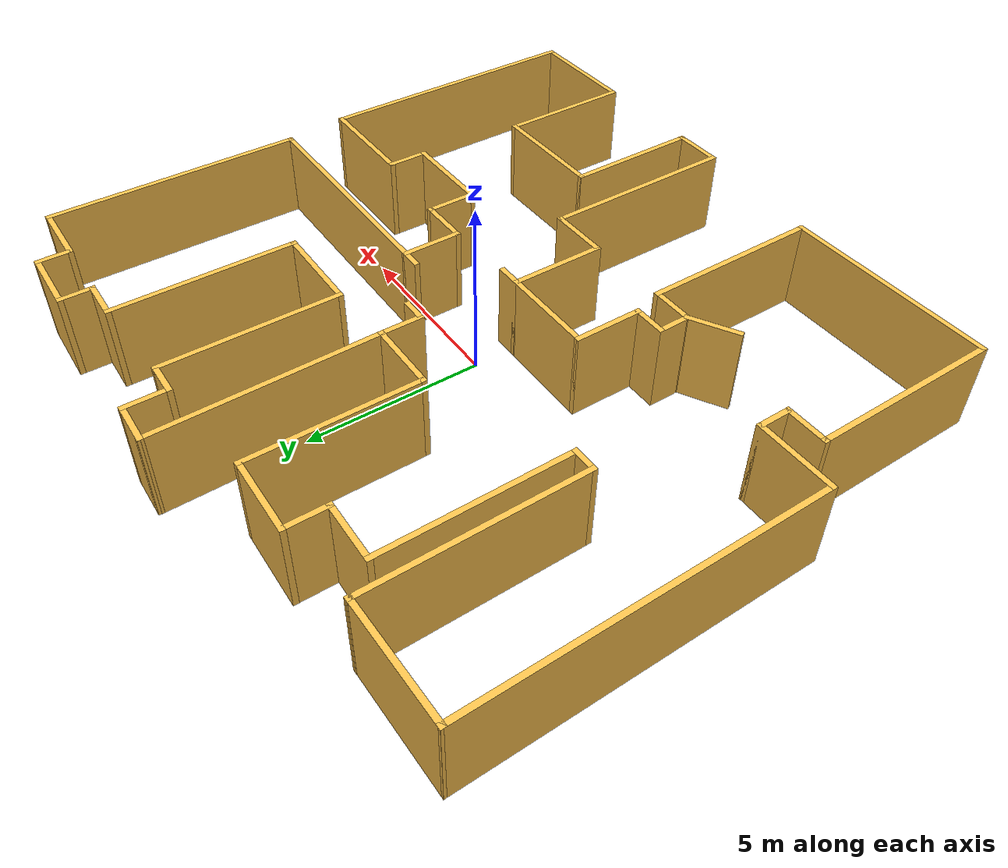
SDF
<?xml version='1.0'?>
<sdf version='1.6'>
  <model name='map_118'>
    <pose frame=''>0.022554 -0.245516 0 0 -0 0</pose>
    <link name='Wall_10'>
      <collision name='Wall_10_Collision'>
        <geometry>
          <box>
            <size>5.25 0.15 2.5</size>
          </box>
        </geometry>
        <pose frame=''>0 0 1.25 0 -0 0</pose>
      </collision>
      <visual name='Wall_10_Visual'>
        <pose frame=''>0 0 1.25 0 -0 0</pose>
        <geometry>
          <box>
            <size>5.25 0.15 2.5</size>
          </box>
        </geometry>
        <material>
          <script>
            <uri>file://media/materials/scripts/gazebo.material</uri>
            <name>Gazebo/Grey</name>
          </script>
          <ambient>1 0.764706 0.305882 1</ambient>
        </material>
        <meta>
          <layer>0</layer>
        </meta>
      </visual>
      <pose frame=''>-2.57383 -6.12539 0 0 -0 1.5708</pose>
    </link>
    <link name='Wall_11'>
      <collision name='Wall_11_Collision'>
        <geometry>
          <box>
            <size>1.25 0.15 2.5</size>
          </box>
        </geometry>
        <pose frame=''>0 0 1.25 0 -0 0</pose>
      </collision>
      <visual name='Wall_11_Visual'>
        <pose frame=''>0 0 1.25 0 -0 0</pose>
        <geometry>
          <box>
            <size>1.25 0.15 2.5</size>
          </box>
        </geometry>
        <material>
          <script>
            <uri>file://media/materials/scripts/gazebo.material</uri>
            <name>Gazebo/Grey</name>
          </script>
          <ambient>1 0.764706 0.305882 1</ambient>
        </material>
        <meta>
          <layer>0</layer>
        </meta>
      </visual>
      <pose frame=''>-3.12383 -3.57539 0 0 -0 3.14159</pose>
    </link>
    <link name='Wall_12'>
      <collision name='Wall_12_Collision'>
        <geometry>
          <box>
            <size>1 0.15 2.5</size>
          </box>
        </geometry>
        <pose frame=''>0 0 1.25 0 -0 0</pose>
      </collision>
      <visual name='Wall_12_Visual'>
        <pose frame=''>0 0 1.25 0 -0 0</pose>
        <geometry>
          <box>
            <size>1 0.15 2.5</size>
          </box>
        </geometry>
        <material>
          <script>
            <uri>file://media/materials/scripts/gazebo.material</uri>
            <name>Gazebo/Grey</name>
          </script>
          <ambient>1 0.764706 0.305882 1</ambient>
        </material>
        <meta>
          <layer>0</layer>
        </meta>
      </visual>
      <pose frame=''>-3.67383 -3.15039 0 0 -0 1.5708</pose>
    </link>
    <link name='Wall_13'>
      <collision name='Wall_13_Collision'>
        <geometry>
          <box>
            <size>1 0.15 2.5</size>
          </box>
        </geometry>
        <pose frame=''>0 0 1.25 0 -0 0</pose>
      </collision>
      <visual name='Wall_13_Visual'>
        <pose frame=''>0 0 1.25 0 -0 0</pose>
        <geometry>
          <box>
            <size>1 0.15 2.5</size>
          </box>
        </geometry>
        <material>
          <script>
            <uri>file://media/materials/scripts/gazebo.material</uri>
            <name>Gazebo/Grey</name>
          </script>
          <ambient>1 0.764706 0.305882 1</ambient>
        </material>
        <meta>
          <layer>0</layer>
        </meta>
      </visual>
      <pose frame=''>-3.24883 -2.72539 0 0 -0 0</pose>
    </link>
    <link name='Wall_14'>
      <collision name='Wall_14_Collision'>
        <geometry>
          <box>
            <size>2 0.15 2.5</size>
          </box>
        </geometry>
        <pose frame=''>0 0 1.25 0 -0 0</pose>
      </collision>
      <visual name='Wall_14_Visual'>
        <pose frame=''>0 0 1.25 0 -0 0</pose>
        <geometry>
          <box>
            <size>2 0.15 2.5</size>
          </box>
        </geometry>
        <material>
          <script>
            <uri>file://media/materials/scripts/gazebo.material</uri>
            <name>Gazebo/Grey</name>
          </script>
          <ambient>1 0.764706 0.305882 1</ambient>
        </material>
        <meta>
          <layer>0</layer>
        </meta>
      </visual>
      <pose frame=''>-2.82383 -1.80039 0 0 -0 1.5708</pose>
    </link>
    <link name='Wall_15'>
      <collision name='Wall_15_Collision'>
        <geometry>
          <box>
            <size>2.75 0.15 2.5</size>
          </box>
        </geometry>
        <pose frame=''>0 0 1.25 0 -0 0</pose>
      </collision>
      <visual name='Wall_15_Visual'>
        <pose frame=''>0 0 1.25 0 -0 0</pose>
        <geometry>
          <box>
            <size>2.75 0.15 2.5</size>
          </box>
        </geometry>
        <material>
          <script>
            <uri>file://media/materials/scripts/gazebo.material</uri>
            <name>Gazebo/Grey</name>
          </script>
          <ambient>1 0.764706 0.305882 1</ambient>
        </material>
        <meta>
          <layer>0</layer>
        </meta>
      </visual>
      <pose frame=''>-1.52383 -0.87539 0 0 -0 0</pose>
    </link>
    <link name='Wall_16'>
      <collision name='Wall_16_Collision'>
        <geometry>
          <box>
            <size>2.75 0.15 2.5</size>
          </box>
        </geometry>
        <pose frame=''>0 0 1.25 0 -0 0</pose>
      </collision>
      <visual name='Wall_16_Visual'>
        <pose frame=''>0 0 1.25 0 -0 0</pose>
        <geometry>
          <box>
            <size>2.75 0.15 2.5</size>
          </box>
        </geometry>
        <material>
          <script>
            <uri>file://media/materials/scripts/gazebo.material</uri>
            <name>Gazebo/Grey</name>
          </script>
          <ambient>1 0.764706 0.305882 1</ambient>
        </material>
        <meta>
          <layer>0</layer>
        </meta>
      </visual>
      <pose frame=''>-0.223829 -2.17539 0 0 -0 -1.5708</pose>
    </link>
    <link name='Wall_17'>
      <collision name='Wall_17_Collision'>
        <geometry>
          <box>
            <size>1.75 0.15 2.5</size>
          </box>
        </geometry>
        <pose frame=''>0 0 1.25 0 -0 0</pose>
      </collision>
      <visual name='Wall_17_Visual'>
        <pose frame=''>0 0 1.25 0 -0 0</pose>
        <geometry>
          <box>
            <size>1.75 0.15 2.5</size>
          </box>
        </geometry>
        <material>
          <script>
            <uri>file://media/materials/scripts/gazebo.material</uri>
            <name>Gazebo/Grey</name>
          </script>
          <ambient>1 0.764706 0.305882 1</ambient>
        </material>
        <meta>
          <layer>0</layer>
        </meta>
      </visual>
      <pose frame=''>0.576171 -3.47539 0 0 -0 0</pose>
    </link>
    <link name='Wall_18'>
      <collision name='Wall_18_Collision'>
        <geometry>
          <box>
            <size>5.75 0.15 2.5</size>
          </box>
        </geometry>
        <pose frame=''>0 0 1.25 0 -0 0</pose>
      </collision>
      <visual name='Wall_18_Visual'>
        <pose frame=''>0 0 1.25 0 -0 0</pose>
        <geometry>
          <box>
            <size>5.75 0.15 2.5</size>
          </box>
        </geometry>
        <material>
          <script>
            <uri>file://media/materials/scripts/gazebo.material</uri>
            <name>Gazebo/Grey</name>
          </script>
          <ambient>1 0.764706 0.305882 1</ambient>
        </material>
        <meta>
          <layer>0</layer>
        </meta>
      </visual>
      <pose frame=''>1.37617 -6.27539 0 0 -0 -1.5708</pose>
    </link>
    <link name='Wall_19'>
      <collision name='Wall_19_Collision'>
        <geometry>
          <box>
            <size>1.5 0.15 2.5</size>
          </box>
        </geometry>
        <pose frame=''>0 0 1.25 0 -0 0</pose>
      </collision>
      <visual name='Wall_19_Visual'>
        <pose frame=''>0 0 1.25 0 -0 0</pose>
        <geometry>
          <box>
            <size>1.5 0.15 2.5</size>
          </box>
        </geometry>
        <material>
          <script>
            <uri>file://media/materials/scripts/gazebo.material</uri>
            <name>Gazebo/Grey</name>
          </script>
          <ambient>1 0.764706 0.305882 1</ambient>
        </material>
        <meta>
          <layer>0</layer>
        </meta>
      </visual>
      <pose frame=''>2.05117 -9.07539 0 0 -0 0</pose>
    </link>
    <link name='Wall_20'>
      <collision name='Wall_20_Collision'>
        <geometry>
          <box>
            <size>4 0.15 2.5</size>
          </box>
        </geometry>
        <pose frame=''>0 0 1.25 0 -0 0</pose>
      </collision>
      <visual name='Wall_20_Visual'>
        <pose frame=''>0 0 1.25 0 -0 0</pose>
        <geometry>
          <box>
            <size>4 0.15 2.5</size>
          </box>
        </geometry>
        <material>
          <script>
            <uri>file://media/materials/scripts/gazebo.material</uri>
            <name>Gazebo/Grey</name>
          </script>
          <ambient>1 0.764706 0.305882 1</ambient>
        </material>
        <meta>
          <layer>0</layer>
        </meta>
      </visual>
      <pose frame=''>2.72617 -7.15039 0 0 -0 1.5708</pose>
    </link>
    <link name='Wall_21'>
      <collision name='Wall_21_Collision'>
        <geometry>
          <box>
            <size>3.5 0.15 2.5</size>
          </box>
        </geometry>
        <pose frame=''>0 0 1.25 0 -0 0</pose>
      </collision>
      <visual name='Wall_21_Visual'>
        <pose frame=''>0 0 1.25 0 -0 0</pose>
        <geometry>
          <box>
            <size>3.5 0.15 2.5</size>
          </box>
        </geometry>
        <material>
          <script>
            <uri>file://media/materials/scripts/gazebo.material</uri>
            <name>Gazebo/Grey</name>
          </script>
          <ambient>1 0.764706 0.305882 1</ambient>
        </material>
        <meta>
          <layer>0</layer>
        </meta>
      </visual>
      <pose frame=''>4.40117 -5.22539 0 0 -0 0</pose>
    </link>
    <link name='Wall_22'>
      <collision name='Wall_22_Collision'>
        <geometry>
          <box>
            <size>4 0.15 2.5</size>
          </box>
        </geometry>
        <pose frame=''>0 0 1.25 0 -0 0</pose>
      </collision>
      <visual name='Wall_22_Visual'>
        <pose frame=''>0 0 1.25 0 -0 0</pose>
        <geometry>
          <box>
            <size>4 0.15 2.5</size>
          </box>
        </geometry>
        <material>
          <script>
            <uri>file://media/materials/scripts/gazebo.material</uri>
            <name>Gazebo/Grey</name>
          </script>
          <ambient>1 0.764706 0.305882 1</ambient>
        </material>
        <meta>
          <layer>0</layer>
        </meta>
      </visual>
      <pose frame=''>6.07617 -7.15039 0 0 -0 -1.5708</pose>
    </link>
    <link name='Wall_23'>
      <collision name='Wall_23_Collision'>
        <geometry>
          <box>
            <size>3.5 0.15 2.5</size>
          </box>
        </geometry>
        <pose frame=''>0 0 1.25 0 -0 0</pose>
      </collision>
      <visual name='Wall_23_Visual'>
        <pose frame=''>0 0 1.25 0 -0 0</pose>
        <geometry>
          <box>
            <size>3.5 0.15 2.5</size>
          </box>
        </geometry>
        <material>
          <script>
            <uri>file://media/materials/scripts/gazebo.material</uri>
            <name>Gazebo/Grey</name>
          </script>
          <ambient>1 0.764706 0.305882 1</ambient>
        </material>
        <meta>
          <layer>0</layer>
        </meta>
      </visual>
      <pose frame=''>7.75117 -9.07539 0 0 -0 0</pose>
    </link>
    <link name='Wall_24'>
      <collision name='Wall_24_Collision'>
        <geometry>
          <box>
            <size>8.25 0.15 2.5</size>
          </box>
        </geometry>
        <pose frame=''>0 0 1.25 0 -0 0</pose>
      </collision>
      <visual name='Wall_24_Visual'>
        <pose frame=''>0 0 1.25 0 -0 0</pose>
        <geometry>
          <box>
            <size>8.25 0.15 2.5</size>
          </box>
        </geometry>
        <material>
          <script>
            <uri>file://media/materials/scripts/gazebo.material</uri>
            <name>Gazebo/Grey</name>
          </script>
          <ambient>1 0.764706 0.305882 1</ambient>
        </material>
        <meta>
          <layer>0</layer>
        </meta>
      </visual>
      <pose frame=''>9.42617 -5.02539 0 0 -0 1.5708</pose>
    </link>
    <link name='Wall_25'>
      <collision name='Wall_25_Collision'>
        <geometry>
          <box>
            <size>3.25 0.15 2.5</size>
          </box>
        </geometry>
        <pose frame=''>0 0 1.25 0 -0 0</pose>
      </collision>
      <visual name='Wall_25_Visual'>
        <pose frame=''>0 0 1.25 0 -0 0</pose>
        <geometry>
          <box>
            <size>3.25 0.15 2.5</size>
          </box>
        </geometry>
        <material>
          <script>
            <uri>file://media/materials/scripts/gazebo.material</uri>
            <name>Gazebo/Grey</name>
          </script>
          <ambient>1 0.764706 0.305882 1</ambient>
        </material>
        <meta>
          <layer>0</layer>
        </meta>
      </visual>
      <pose frame=''>7.87617 -0.97539 0 0 -0 3.14159</pose>
    </link>
    <link name='Wall_26'>
      <collision name='Wall_26_Collision'>
        <geometry>
          <box>
            <size>1.25 0.15 2.5</size>
          </box>
        </geometry>
        <pose frame=''>0 0 1.25 0 -0 0</pose>
      </collision>
      <visual name='Wall_26_Visual'>
        <pose frame=''>0 0 1.25 0 -0 0</pose>
        <geometry>
          <box>
            <size>1.25 0.15 2.5</size>
          </box>
        </geometry>
        <material>
          <script>
            <uri>file://media/materials/scripts/gazebo.material</uri>
            <name>Gazebo/Grey</name>
          </script>
          <ambient>1 0.764706 0.305882 1</ambient>
        </material>
        <meta>
          <layer>0</layer>
        </meta>
      </visual>
      <pose frame=''>6.32617 -1.52539 0 0 -0 -1.5708</pose>
    </link>
    <link name='Wall_27'>
      <collision name='Wall_27_Collision'>
        <geometry>
          <box>
            <size>2.75 0.15 2.5</size>
          </box>
        </geometry>
        <pose frame=''>0 0 1.25 0 -0 0</pose>
      </collision>
      <visual name='Wall_27_Visual'>
        <pose frame=''>0 0 1.25 0 -0 0</pose>
        <geometry>
          <box>
            <size>2.75 0.15 2.5</size>
          </box>
        </geometry>
        <material>
          <script>
            <uri>file://media/materials/scripts/gazebo.material</uri>
            <name>Gazebo/Grey</name>
          </script>
          <ambient>1 0.764706 0.305882 1</ambient>
        </material>
        <meta>
          <layer>0</layer>
        </meta>
      </visual>
      <pose frame=''>5.02617 -2.07539 0 0 -0 3.14159</pose>
    </link>
    <link name='Wall_28'>
      <collision name='Wall_28_Collision'>
        <geometry>
          <box>
            <size>1.5 0.15 2.5</size>
          </box>
        </geometry>
        <pose frame=''>0 0 1.25 0 -0 0</pose>
      </collision>
      <visual name='Wall_28_Visual'>
        <pose frame=''>0 0 1.25 0 -0 0</pose>
        <geometry>
          <box>
            <size>1.5 0.15 2.5</size>
          </box>
        </geometry>
        <material>
          <script>
            <uri>file://media/materials/scripts/gazebo.material</uri>
            <name>Gazebo/Grey</name>
          </script>
          <ambient>1 0.764706 0.305882 1</ambient>
        </material>
        <meta>
          <layer>0</layer>
        </meta>
      </visual>
      <pose frame=''>3.72617 -1.40039 0 0 -0 1.5708</pose>
    </link>
    <link name='Wall_33'>
      <collision name='Wall_33_Collision'>
        <geometry>
          <box>
            <size>2 0.15 2.5</size>
          </box>
        </geometry>
        <pose frame=''>0 0 1.25 0 -0 0</pose>
      </collision>
      <visual name='Wall_33_Visual'>
        <pose frame=''>0 0 1.25 0 -0 0</pose>
        <geometry>
          <box>
            <size>2 0.15 2.5</size>
          </box>
        </geometry>
        <material>
          <script>
            <uri>file://media/materials/scripts/gazebo.material</uri>
            <name>Gazebo/Grey</name>
          </script>
          <ambient>1 0.764706 0.305882 1</ambient>
        </material>
        <meta>
          <layer>0</layer>
        </meta>
      </visual>
      <pose frame=''>8.30117 8.22461 0 0 -0 3.14159</pose>
    </link>
    <link name='Wall_34'>
      <collision name='Wall_34_Collision'>
        <geometry>
          <box>
            <size>1 0.15 2.5</size>
          </box>
        </geometry>
        <pose frame=''>0 0 1.25 0 -0 0</pose>
      </collision>
      <visual name='Wall_34_Visual'>
        <pose frame=''>0 0 1.25 0 -0 0</pose>
        <geometry>
          <box>
            <size>1 0.15 2.5</size>
          </box>
        </geometry>
        <material>
          <script>
            <uri>file://media/materials/scripts/gazebo.material</uri>
            <name>Gazebo/Grey</name>
          </script>
          <ambient>1 0.764706 0.305882 1</ambient>
        </material>
        <meta>
          <layer>0</layer>
        </meta>
      </visual>
      <pose frame=''>7.37617 8.64961 0 0 -0 1.5708</pose>
    </link>
    <link name='Wall_35'>
      <collision name='Wall_35_Collision'>
        <geometry>
          <box>
            <size>2 0.15 2.5</size>
          </box>
        </geometry>
        <pose frame=''>0 0 1.25 0 -0 0</pose>
      </collision>
      <visual name='Wall_35_Visual'>
        <pose frame=''>0 0 1.25 0 -0 0</pose>
        <geometry>
          <box>
            <size>2 0.15 2.5</size>
          </box>
        </geometry>
        <material>
          <script>
            <uri>file://media/materials/scripts/gazebo.material</uri>
            <name>Gazebo/Grey</name>
          </script>
          <ambient>1 0.764706 0.305882 1</ambient>
        </material>
        <meta>
          <layer>0</layer>
        </meta>
      </visual>
      <pose frame=''>6.45117 9.07461 0 0 -0 3.14159</pose>
    </link>
    <link name='Wall_36'>
      <collision name='Wall_36_Collision'>
        <geometry>
          <box>
            <size>1 0.15 2.5</size>
          </box>
        </geometry>
        <pose frame=''>0 0 1.25 0 -0 0</pose>
      </collision>
      <visual name='Wall_36_Visual'>
        <pose frame=''>0 0 1.25 0 -0 0</pose>
        <geometry>
          <box>
            <size>1 0.15 2.5</size>
          </box>
        </geometry>
        <material>
          <script>
            <uri>file://media/materials/scripts/gazebo.material</uri>
            <name>Gazebo/Grey</name>
          </script>
          <ambient>1 0.764706 0.305882 1</ambient>
        </material>
        <meta>
          <layer>0</layer>
        </meta>
      </visual>
      <pose frame=''>5.52617 8.64961 0 0 -0 -1.5708</pose>
    </link>
    <link name='Wall_37'>
      <collision name='Wall_37_Collision'>
        <geometry>
          <box>
            <size>1.25 0.15 2.5</size>
          </box>
        </geometry>
        <pose frame=''>0 0 1.25 0 -0 0</pose>
      </collision>
      <visual name='Wall_37_Visual'>
        <pose frame=''>0 0 1.25 0 -0 0</pose>
        <geometry>
          <box>
            <size>1.25 0.15 2.5</size>
          </box>
        </geometry>
        <material>
          <script>
            <uri>file://media/materials/scripts/gazebo.material</uri>
            <name>Gazebo/Grey</name>
          </script>
          <ambient>1 0.764706 0.305882 1</ambient>
        </material>
        <meta>
          <layer>0</layer>
        </meta>
      </visual>
      <pose frame=''>4.97617 8.22461 0 0 -0 3.14159</pose>
    </link>
    <link name='Wall_38'>
      <collision name='Wall_38_Collision'>
        <geometry>
          <box>
            <size>5.25 0.15 2.5</size>
          </box>
        </geometry>
        <pose frame=''>0 0 1.25 0 -0 0</pose>
      </collision>
      <visual name='Wall_38_Visual'>
        <pose frame=''>0 0 1.25 0 -0 0</pose>
        <geometry>
          <box>
            <size>5.25 0.15 2.5</size>
          </box>
        </geometry>
        <material>
          <script>
            <uri>file://media/materials/scripts/gazebo.material</uri>
            <name>Gazebo/Grey</name>
          </script>
          <ambient>1 0.764706 0.305882 1</ambient>
        </material>
        <meta>
          <layer>0</layer>
        </meta>
      </visual>
      <pose frame=''>4.42617 5.67461 0 0 -0 -1.5708</pose>
    </link>
    <link name='Wall_39'>
      <collision name='Wall_39_Collision'>
        <geometry>
          <box>
            <size>2.75 0.15 2.5</size>
          </box>
        </geometry>
        <pose frame=''>0 0 1.25 0 -0 0</pose>
      </collision>
      <visual name='Wall_39_Visual'>
        <pose frame=''>0 0 1.25 0 -0 0</pose>
        <geometry>
          <box>
            <size>2.75 0.15 2.5</size>
          </box>
        </geometry>
        <material>
          <script>
            <uri>file://media/materials/scripts/gazebo.material</uri>
            <name>Gazebo/Grey</name>
          </script>
          <ambient>1 0.764706 0.305882 1</ambient>
        </material>
        <meta>
          <layer>0</layer>
        </meta>
      </visual>
      <pose frame=''>3.12617 3.12461 0 0 -0 3.14159</pose>
    </link>
    <link name='Wall_4'>
      <collision name='Wall_4_Collision'>
        <geometry>
          <box>
            <size>9.75 0.15 2.5</size>
          </box>
        </geometry>
        <pose frame=''>0 0 1.25 0 -0 0</pose>
      </collision>
      <visual name='Wall_4_Visual'>
        <pose frame=''>0 0 1.25 0 -0 0</pose>
        <geometry>
          <box>
            <size>9.75 0.15 2.5</size>
          </box>
        </geometry>
        <material>
          <script>
            <uri>file://media/materials/scripts/gazebo.material</uri>
            <name>Gazebo/Grey</name>
          </script>
          <ambient>1 0.764706 0.305882 1</ambient>
        </material>
        <meta>
          <layer>0</layer>
        </meta>
      </visual>
      <pose frame=''>-9.42383 2.32461 0 0 -0 -1.5708</pose>
    </link>
    <link name='Wall_40'>
      <collision name='Wall_40_Collision'>
        <geometry>
          <box>
            <size>5 0.15 2.5</size>
          </box>
        </geometry>
        <pose frame=''>0 0 1.25 0 -0 0</pose>
      </collision>
      <visual name='Wall_40_Visual'>
        <pose frame=''>0 0 1.25 0 -0 0</pose>
        <geometry>
          <box>
            <size>5 0.15 2.5</size>
          </box>
        </geometry>
        <material>
          <script>
            <uri>file://media/materials/scripts/gazebo.material</uri>
            <name>Gazebo/Grey</name>
          </script>
          <ambient>1 0.764706 0.305882 1</ambient>
        </material>
        <meta>
          <layer>0</layer>
        </meta>
      </visual>
      <pose frame=''>1.82617 5.54961 0 0 -0 1.5708</pose>
    </link>
    <link name='Wall_43'>
      <collision name='Wall_43_Collision'>
        <geometry>
          <box>
            <size>1 0.15 2.5</size>
          </box>
        </geometry>
        <pose frame=''>0 0 1.25 0 -0 0</pose>
      </collision>
      <visual name='Wall_43_Visual'>
        <pose frame=''>0 0 1.25 0 -0 0</pose>
        <geometry>
          <box>
            <size>1 0.15 2.5</size>
          </box>
        </geometry>
        <material>
          <script>
            <uri>file://media/materials/scripts/gazebo.material</uri>
            <name>Gazebo/Grey</name>
          </script>
          <ambient>1 0.764706 0.305882 1</ambient>
        </material>
        <meta>
          <layer>0</layer>
        </meta>
      </visual>
      <pose frame=''>1.40117 7.97461 0 0 -0 3.14159</pose>
    </link>
    <link name='Wall_44'>
      <collision name='Wall_44_Collision'>
        <geometry>
          <box>
            <size>1.25 0.15 2.5</size>
          </box>
        </geometry>
        <pose frame=''>0 0 1.25 0 -0 0</pose>
      </collision>
      <visual name='Wall_44_Visual'>
        <pose frame=''>0 0 1.25 0 -0 0</pose>
        <geometry>
          <box>
            <size>1.25 0.15 2.5</size>
          </box>
        </geometry>
        <material>
          <script>
            <uri>file://media/materials/scripts/gazebo.material</uri>
            <name>Gazebo/Grey</name>
          </script>
          <ambient>1 0.764706 0.305882 1</ambient>
        </material>
        <meta>
          <layer>0</layer>
        </meta>
      </visual>
      <pose frame=''>0.976171 8.52461 0 0 -0 1.5708</pose>
    </link>
    <link name='Wall_45'>
      <collision name='Wall_45_Collision'>
        <geometry>
          <box>
            <size>1.25 0.15 2.5</size>
          </box>
        </geometry>
        <pose frame=''>0 0 1.25 0 -0 0</pose>
      </collision>
      <visual name='Wall_45_Visual'>
        <pose frame=''>0 0 1.25 0 -0 0</pose>
        <geometry>
          <box>
            <size>1.25 0.15 2.5</size>
          </box>
        </geometry>
        <material>
          <script>
            <uri>file://media/materials/scripts/gazebo.material</uri>
            <name>Gazebo/Grey</name>
          </script>
          <ambient>1 0.764706 0.305882 1</ambient>
        </material>
        <meta>
          <layer>0</layer>
        </meta>
      </visual>
      <pose frame=''>0.426171 9.07461 0 0 -0 3.14159</pose>
    </link>
    <link name='Wall_46'>
      <collision name='Wall_46_Collision'>
        <geometry>
          <box>
            <size>6.25 0.15 2.5</size>
          </box>
        </geometry>
        <pose frame=''>0 0 1.25 0 -0 0</pose>
      </collision>
      <visual name='Wall_46_Visual'>
        <pose frame=''>0 0 1.25 0 -0 0</pose>
        <geometry>
          <box>
            <size>6.25 0.15 2.5</size>
          </box>
        </geometry>
        <material>
          <script>
            <uri>file://media/materials/scripts/gazebo.material</uri>
            <name>Gazebo/Grey</name>
          </script>
          <ambient>1 0.764706 0.305882 1</ambient>
        </material>
        <meta>
          <layer>0</layer>
        </meta>
      </visual>
      <pose frame=''>-0.077305 6.02461 0 0 -0 -1.55554</pose>
    </link>
    <link name='Wall_47'>
      <collision name='Wall_47_Collision'>
        <geometry>
          <box>
            <size>2.09305 0.15 2.5</size>
          </box>
        </geometry>
        <pose frame=''>0 0 1.25 0 -0 0</pose>
      </collision>
      <visual name='Wall_47_Visual'>
        <pose frame=''>0 0 1.25 0 -0 0</pose>
        <geometry>
          <box>
            <size>2.09305 0.15 2.5</size>
          </box>
        </geometry>
        <material>
          <script>
            <uri>file://media/materials/scripts/gazebo.material</uri>
            <name>Gazebo/Grey</name>
          </script>
          <ambient>1 0.764706 0.305882 1</ambient>
        </material>
        <meta>
          <layer>0</layer>
        </meta>
      </visual>
      <pose frame=''>-1.00231 2.97461 0 0 -0 3.14159</pose>
    </link>
    <link name='Wall_48'>
      <collision name='Wall_48_Collision'>
        <geometry>
          <box>
            <size>4.75 0.15 2.5</size>
          </box>
        </geometry>
        <pose frame=''>0 0 1.25 0 -0 0</pose>
      </collision>
      <visual name='Wall_48_Visual'>
        <pose frame=''>0 0 1.25 0 -0 0</pose>
        <geometry>
          <box>
            <size>4.75 0.15 2.5</size>
          </box>
        </geometry>
        <material>
          <script>
            <uri>file://media/materials/scripts/gazebo.material</uri>
            <name>Gazebo/Grey</name>
          </script>
          <ambient>1 0.764706 0.305882 1</ambient>
        </material>
        <meta>
          <layer>0</layer>
        </meta>
      </visual>
      <pose frame=''>-1.97383 5.27461 0 0 -0 1.5708</pose>
    </link>
    <link name='Wall_49'>
      <collision name='Wall_49_Collision'>
        <geometry>
          <box>
            <size>2.25 0.15 2.5</size>
          </box>
        </geometry>
        <pose frame=''>0 0 1.25 0 -0 0</pose>
      </collision>
      <visual name='Wall_49_Visual'>
        <pose frame=''>0 0 1.25 0 -0 0</pose>
        <geometry>
          <box>
            <size>2.25 0.15 2.5</size>
          </box>
        </geometry>
        <material>
          <script>
            <uri>file://media/materials/scripts/gazebo.material</uri>
            <name>Gazebo/Grey</name>
          </script>
          <ambient>1 0.764706 0.305882 1</ambient>
        </material>
        <meta>
          <layer>0</layer>
        </meta>
      </visual>
      <pose frame=''>-3.02383 7.57461 0 0 -0 3.14159</pose>
    </link>
    <link name='Wall_5'>
      <collision name='Wall_5_Collision'>
        <geometry>
          <box>
            <size>2.25 0.15 2.5</size>
          </box>
        </geometry>
        <pose frame=''>0 0 1.25 0 -0 0</pose>
      </collision>
      <visual name='Wall_5_Visual'>
        <pose frame=''>0 0 1.25 0 -0 0</pose>
        <geometry>
          <box>
            <size>2.25 0.15 2.5</size>
          </box>
        </geometry>
        <material>
          <script>
            <uri>file://media/materials/scripts/gazebo.material</uri>
            <name>Gazebo/Grey</name>
          </script>
          <ambient>1 0.764706 0.305882 1</ambient>
        </material>
        <meta>
          <layer>0</layer>
        </meta>
      </visual>
      <pose frame=''>-8.37383 -2.47539 0 0 -0 0</pose>
    </link>
    <link name='Wall_50'>
      <collision name='Wall_50_Collision'>
        <geometry>
          <box>
            <size>1.25 0.15 2.5</size>
          </box>
        </geometry>
        <pose frame=''>0 0 1.25 0 -0 0</pose>
      </collision>
      <visual name='Wall_50_Visual'>
        <pose frame=''>0 0 1.25 0 -0 0</pose>
        <geometry>
          <box>
            <size>1.25 0.15 2.5</size>
          </box>
        </geometry>
        <material>
          <script>
            <uri>file://media/materials/scripts/gazebo.material</uri>
            <name>Gazebo/Grey</name>
          </script>
          <ambient>1 0.764706 0.305882 1</ambient>
        </material>
        <meta>
          <layer>0</layer>
        </meta>
      </visual>
      <pose frame=''>-4.07383 7.02461 0 0 -0 -1.5708</pose>
    </link>
    <link name='Wall_51'>
      <collision name='Wall_51_Collision'>
        <geometry>
          <box>
            <size>1.75 0.15 2.5</size>
          </box>
        </geometry>
        <pose frame=''>0 0 1.25 0 -0 0</pose>
      </collision>
      <visual name='Wall_51_Visual'>
        <pose frame=''>0 0 1.25 0 -0 0</pose>
        <geometry>
          <box>
            <size>1.75 0.15 2.5</size>
          </box>
        </geometry>
        <material>
          <script>
            <uri>file://media/materials/scripts/gazebo.material</uri>
            <name>Gazebo/Grey</name>
          </script>
          <ambient>1 0.764706 0.305882 1</ambient>
        </material>
        <meta>
          <layer>0</layer>
        </meta>
      </visual>
      <pose frame=''>-4.87383 6.47461 0 0 -0 3.14159</pose>
    </link>
    <link name='Wall_52'>
      <collision name='Wall_52_Collision'>
        <geometry>
          <box>
            <size>5.25 0.15 2.5</size>
          </box>
        </geometry>
        <pose frame=''>0 0 1.25 0 -0 0</pose>
      </collision>
      <visual name='Wall_52_Visual'>
        <pose frame=''>0 0 1.25 0 -0 0</pose>
        <geometry>
          <box>
            <size>5.25 0.15 2.5</size>
          </box>
        </geometry>
        <material>
          <script>
            <uri>file://media/materials/scripts/gazebo.material</uri>
            <name>Gazebo/Grey</name>
          </script>
          <ambient>1 0.764706 0.305882 1</ambient>
        </material>
        <meta>
          <layer>0</layer>
        </meta>
      </visual>
      <pose frame=''>-5.67383 3.92461 0 0 -0 -1.5708</pose>
    </link>
    <link name='Wall_53'>
      <collision name='Wall_53_Collision'>
        <geometry>
          <box>
            <size>0.75 0.15 2.5</size>
          </box>
        </geometry>
        <pose frame=''>0 0 1.25 0 -0 0</pose>
      </collision>
      <visual name='Wall_53_Visual'>
        <pose frame=''>0 0 1.25 0 -0 0</pose>
        <geometry>
          <box>
            <size>0.75 0.15 2.5</size>
          </box>
        </geometry>
        <material>
          <script>
            <uri>file://media/materials/scripts/gazebo.material</uri>
            <name>Gazebo/Grey</name>
          </script>
          <ambient>1 0.764706 0.305882 1</ambient>
        </material>
        <meta>
          <layer>0</layer>
        </meta>
      </visual>
      <pose frame=''>-5.97383 1.37461 0 0 -0 3.14159</pose>
    </link>
    <link name='Wall_54'>
      <collision name='Wall_54_Collision'>
        <geometry>
          <box>
            <size>6 0.15 2.5</size>
          </box>
        </geometry>
        <pose frame=''>0 0 1.25 0 -0 0</pose>
      </collision>
      <visual name='Wall_54_Visual'>
        <pose frame=''>0 0 1.25 0 -0 0</pose>
        <geometry>
          <box>
            <size>6 0.15 2.5</size>
          </box>
        </geometry>
        <material>
          <script>
            <uri>file://media/materials/scripts/gazebo.material</uri>
            <name>Gazebo/Grey</name>
          </script>
          <ambient>1 0.764706 0.305882 1</ambient>
        </material>
        <meta>
          <layer>0</layer>
        </meta>
      </visual>
      <pose frame=''>-6.27383 4.29961 0 0 -0 1.5708</pose>
    </link>
    <link name='Wall_55'>
      <collision name='Wall_55_Collision'>
        <geometry>
          <box>
            <size>3.30159 0.15 2.5</size>
          </box>
        </geometry>
        <pose frame=''>0 0 1.25 0 -0 0</pose>
      </collision>
      <visual name='Wall_55_Visual'>
        <pose frame=''>0 0 1.25 0 -0 0</pose>
        <geometry>
          <box>
            <size>3.30159 0.15 2.5</size>
          </box>
        </geometry>
        <material>
          <script>
            <uri>file://media/materials/scripts/gazebo.material</uri>
            <name>Gazebo/Grey</name>
          </script>
          <ambient>1 0.764706 0.305882 1</ambient>
        </material>
        <meta>
          <layer>0</layer>
        </meta>
      </visual>
      <pose frame=''>-7.84883 7.17461 0 0 -0 -3.10986</pose>
    </link>
    <link name='Wall_57'>
      <collision name='Wall_57_Collision'>
        <geometry>
          <box>
            <size>1.5 0.15 2.5</size>
          </box>
        </geometry>
        <pose frame=''>0 0 1.25 0 -0 0</pose>
      </collision>
      <visual name='Wall_57_Visual'>
        <pose frame=''>0 0 1.25 0 -0 0</pose>
        <geometry>
          <box>
            <size>1.5 0.15 2.5</size>
          </box>
        </geometry>
        <material>
          <script>
            <uri>file://media/materials/scripts/gazebo.material</uri>
            <name>Gazebo/Grey</name>
          </script>
          <ambient>1 0.764706 0.305882 1</ambient>
        </material>
        <meta>
          <layer>0</layer>
        </meta>
      </visual>
      <pose frame=''>-4.2584 -3.91289 0 0 -0 -2.61799</pose>
    </link>
    <link name='Wall_6'>
      <collision name='Wall_6_Collision'>
        <geometry>
          <box>
            <size>1 0.15 2.5</size>
          </box>
        </geometry>
        <pose frame=''>0 0 1.25 0 -0 0</pose>
      </collision>
      <visual name='Wall_6_Visual'>
        <pose frame=''>0 0 1.25 0 -0 0</pose>
        <geometry>
          <box>
            <size>1 0.15 2.5</size>
          </box>
        </geometry>
        <material>
          <script>
            <uri>file://media/materials/scripts/gazebo.material</uri>
            <name>Gazebo/Grey</name>
          </script>
          <ambient>1 0.764706 0.305882 1</ambient>
        </material>
        <meta>
          <layer>0</layer>
        </meta>
      </visual>
      <pose frame=''>-7.32383 -2.90039 0 0 -0 -1.5708</pose>
    </link>
    <link name='Wall_63'>
      <collision name='Wall_63_Collision'>
        <geometry>
          <box>
            <size>1.25 0.15 2.5</size>
          </box>
        </geometry>
        <pose frame=''>0 0 1.25 0 -0 0</pose>
      </collision>
      <visual name='Wall_63_Visual'>
        <pose frame=''>0 0 1.25 0 -0 0</pose>
        <geometry>
          <box>
            <size>1.25 0.15 2.5</size>
          </box>
        </geometry>
        <material>
          <script>
            <uri>file://media/materials/scripts/gazebo.material</uri>
            <name>Gazebo/Grey</name>
          </script>
          <ambient>1 0.764706 0.305882 1</ambient>
        </material>
        <meta>
          <layer>0</layer>
        </meta>
      </visual>
      <pose frame=''>-0.030782 2.42461 0 0 -0 -1.5708</pose>
    </link>
    <link name='Wall_65'>
      <collision name='Wall_65_Collision'>
        <geometry>
          <box>
            <size>0.75 0.15 2.5</size>
          </box>
        </geometry>
        <pose frame=''>0 0 1.25 0 -0 0</pose>
      </collision>
      <visual name='Wall_65_Visual'>
        <pose frame=''>0 0 1.25 0 -0 0</pose>
        <geometry>
          <box>
            <size>0.75 0.15 2.5</size>
          </box>
        </geometry>
        <material>
          <script>
            <uri>file://media/materials/scripts/gazebo.material</uri>
            <name>Gazebo/Grey</name>
          </script>
          <ambient>1 0.764706 0.305882 1</ambient>
        </material>
        <meta>
          <layer>0</layer>
        </meta>
      </visual>
      <pose frame=''>0.269218 1.87461 0 0 -0 0</pose>
    </link>
    <link name='Wall_69'>
      <collision name='Wall_69_Collision'>
        <geometry>
          <box>
            <size>7.5 0.15 2.5</size>
          </box>
        </geometry>
        <pose frame=''>0 0 1.25 0 -0 0</pose>
      </collision>
      <visual name='Wall_69_Visual'>
        <pose frame=''>0 0 1.25 0 -0 0</pose>
        <geometry>
          <box>
            <size>7.5 0.15 2.5</size>
          </box>
        </geometry>
        <material>
          <script>
            <uri>file://media/materials/scripts/gazebo.material</uri>
            <name>Gazebo/Grey</name>
          </script>
          <ambient>1 0.764706 0.305882 1</ambient>
        </material>
        <meta>
          <layer>0</layer>
        </meta>
      </visual>
      <pose frame=''>5.55117 0.87461 0 0 -0 0</pose>
    </link>
    <link name='Wall_7'>
      <collision name='Wall_7_Collision'>
        <geometry>
          <box>
            <size>1.25 0.15 2.5</size>
          </box>
        </geometry>
        <pose frame=''>0 0 1.25 0 -0 0</pose>
      </collision>
      <visual name='Wall_7_Visual'>
        <pose frame=''>0 0 1.25 0 -0 0</pose>
        <geometry>
          <box>
            <size>1.25 0.15 2.5</size>
          </box>
        </geometry>
        <material>
          <script>
            <uri>file://media/materials/scripts/gazebo.material</uri>
            <name>Gazebo/Grey</name>
          </script>
          <ambient>1 0.764706 0.305882 1</ambient>
        </material>
        <meta>
          <layer>0</layer>
        </meta>
      </visual>
      <pose frame=''>-7.87383 -3.32539 0 0 -0 3.14159</pose>
    </link>
    <link name='Wall_71'>
      <collision name='Wall_71_Collision'>
        <geometry>
          <box>
            <size>7.5 0.15 2.5</size>
          </box>
        </geometry>
        <pose frame=''>0 0 1.25 0 -0 0</pose>
      </collision>
      <visual name='Wall_71_Visual'>
        <pose frame=''>0 0 1.25 0 -0 0</pose>
        <geometry>
          <box>
            <size>7.5 0.15 2.5</size>
          </box>
        </geometry>
        <material>
          <script>
            <uri>file://media/materials/scripts/gazebo.material</uri>
            <name>Gazebo/Grey</name>
          </script>
          <ambient>1 0.764706 0.305882 1</ambient>
        </material>
        <meta>
          <layer>0</layer>
        </meta>
      </visual>
      <pose frame=''>9.22617 4.54961 0 0 -0 -1.5708</pose>
    </link>
    <link name='Wall_74'>
      <collision name='Wall_74_Collision'>
        <geometry>
          <box>
            <size>0.75 0.15 2.5</size>
          </box>
        </geometry>
        <pose frame=''>0 0 1.25 0 -0 0</pose>
      </collision>
      <visual name='Wall_74_Visual'>
        <pose frame=''>0 0 1.25 0 -0 0</pose>
        <geometry>
          <box>
            <size>0.75 0.15 2.5</size>
          </box>
        </geometry>
        <material>
          <script>
            <uri>file://media/materials/scripts/gazebo.material</uri>
            <name>Gazebo/Grey</name>
          </script>
          <ambient>1 0.764706 0.305882 1</ambient>
        </material>
        <meta>
          <layer>0</layer>
        </meta>
      </visual>
      <pose frame=''>0.076171 -0.87539 0 0 -0 0</pose>
    </link>
    <link name='Wall_76'>
      <collision name='Wall_76_Collision'>
        <geometry>
          <box>
            <size>1.5 0.15 2.5</size>
          </box>
        </geometry>
        <pose frame=''>0 0 1.25 0 -0 0</pose>
      </collision>
      <visual name='Wall_76_Visual'>
        <pose frame=''>0 0 1.25 0 -0 0</pose>
        <geometry>
          <box>
            <size>1.5 0.15 2.5</size>
          </box>
        </geometry>
        <material>
          <script>
            <uri>file://media/materials/scripts/gazebo.material</uri>
            <name>Gazebo/Grey</name>
          </script>
          <ambient>1 0.764706 0.305882 1</ambient>
        </material>
        <meta>
          <layer>0</layer>
        </meta>
      </visual>
      <pose frame=''>3.05117 -0.72539 0 0 -0 3.14159</pose>
    </link>
    <link name='Wall_77'>
      <collision name='Wall_77_Collision'>
        <geometry>
          <box>
            <size>1.75 0.15 2.5</size>
          </box>
        </geometry>
        <pose frame=''>0 0 1.25 0 -0 0</pose>
      </collision>
      <visual name='Wall_77_Visual'>
        <pose frame=''>0 0 1.25 0 -0 0</pose>
        <geometry>
          <box>
            <size>1.75 0.15 2.5</size>
          </box>
        </geometry>
        <material>
          <script>
            <uri>file://media/materials/scripts/gazebo.material</uri>
            <name>Gazebo/Grey</name>
          </script>
          <ambient>1 0.764706 0.305882 1</ambient>
        </material>
        <meta>
          <layer>0</layer>
        </meta>
      </visual>
      <pose frame=''>2.37617 0.07461 0 0 -0 1.5708</pose>
    </link>
    <link name='Wall_8'>
      <collision name='Wall_8_Collision'>
        <geometry>
          <box>
            <size>5.5 0.15 2.5</size>
          </box>
        </geometry>
        <pose frame=''>0 0 1.25 0 -0 0</pose>
      </collision>
      <visual name='Wall_8_Visual'>
        <pose frame=''>0 0 1.25 0 -0 0</pose>
        <geometry>
          <box>
            <size>5.5 0.15 2.5</size>
          </box>
        </geometry>
        <material>
          <script>
            <uri>file://media/materials/scripts/gazebo.material</uri>
            <name>Gazebo/Grey</name>
          </script>
          <ambient>1 0.764706 0.305882 1</ambient>
        </material>
        <meta>
          <layer>0</layer>
        </meta>
      </visual>
      <pose frame=''>-8.42383 -6.00039 0 0 -0 -1.5708</pose>
    </link>
    <link name='Wall_9'>
      <collision name='Wall_9_Collision'>
        <geometry>
          <box>
            <size>6 0.15 2.5</size>
          </box>
        </geometry>
        <pose frame=''>0 0 1.25 0 -0 0</pose>
      </collision>
      <visual name='Wall_9_Visual'>
        <pose frame=''>0 0 1.25 0 -0 0</pose>
        <geometry>
          <box>
            <size>6 0.15 2.5</size>
          </box>
        </geometry>
        <material>
          <script>
            <uri>file://media/materials/scripts/gazebo.material</uri>
            <name>Gazebo/Grey</name>
          </script>
          <ambient>1 0.764706 0.305882 1</ambient>
        </material>
        <meta>
          <layer>0</layer>
        </meta>
      </visual>
      <pose frame=''>-5.49883 -8.67539 0 0 -0 0</pose>
    </link>
    <static>1</static>
  </model>
</sdf>
